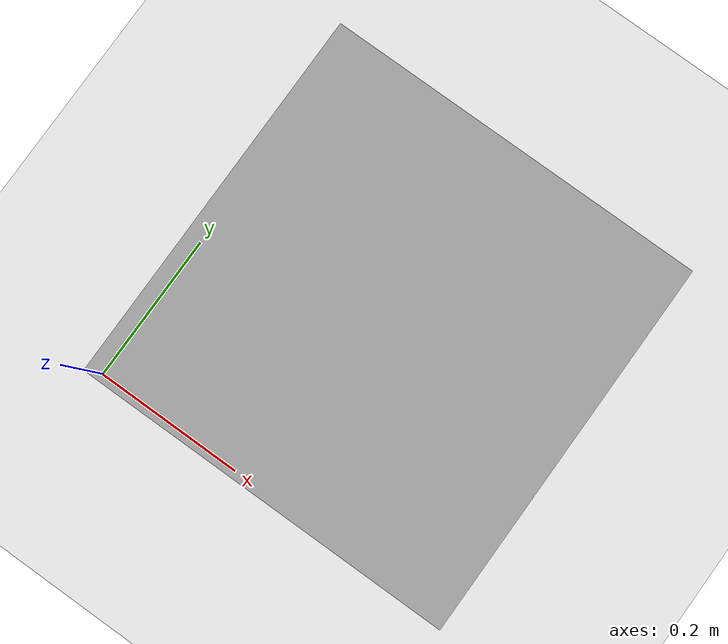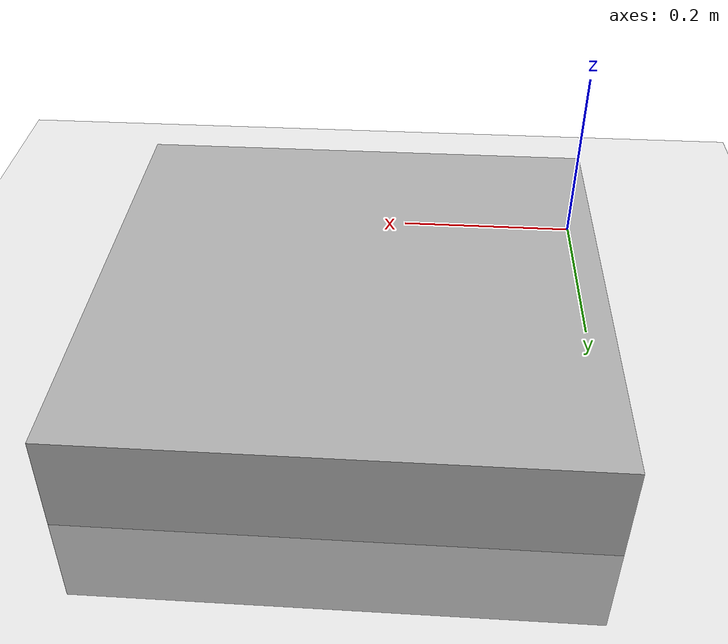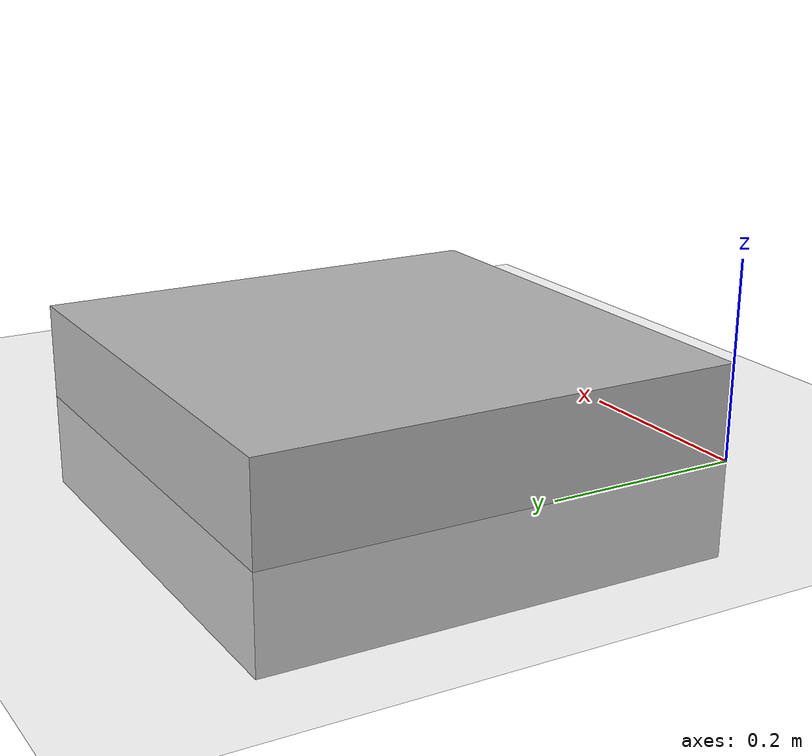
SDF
<?xml version="1.0"?>
<sdf version="1.6">
  <world name="default">
    <include>
      <uri>model://ground_plane</uri>
    </include>

     <include>
      <uri>model://sun</uri>
    </include>

    <gui fullscreen='0'>
      <camera name='user_camera'>
        <pose frame=''>0.33915 -1.14736 1.36749 0 0.6978 1.7762</pose>
        <view_controller>orbit</view_controller>
        <projection_type>perspective</projection_type>
      </camera>
    </gui>

    <model name="box">
      <static>true</static>
      <link name="link">
        <selfCollide>false</selfCollide>
        <pose>0.25 0.25 0 0 0 0</pose>

        <collision name="box_collision">
          <geometry>
            <box>
              <size>0.5 0.5 0.2</size>
            </box>
          </geometry>
        </collision>

        <visual name="visual">
          <geometry>
            <box>
              <size>0.5 0.5 0.2</size>
            </box>
          </geometry>
        </visual>
      </link>
    </model>
  </world>
</sdf>
